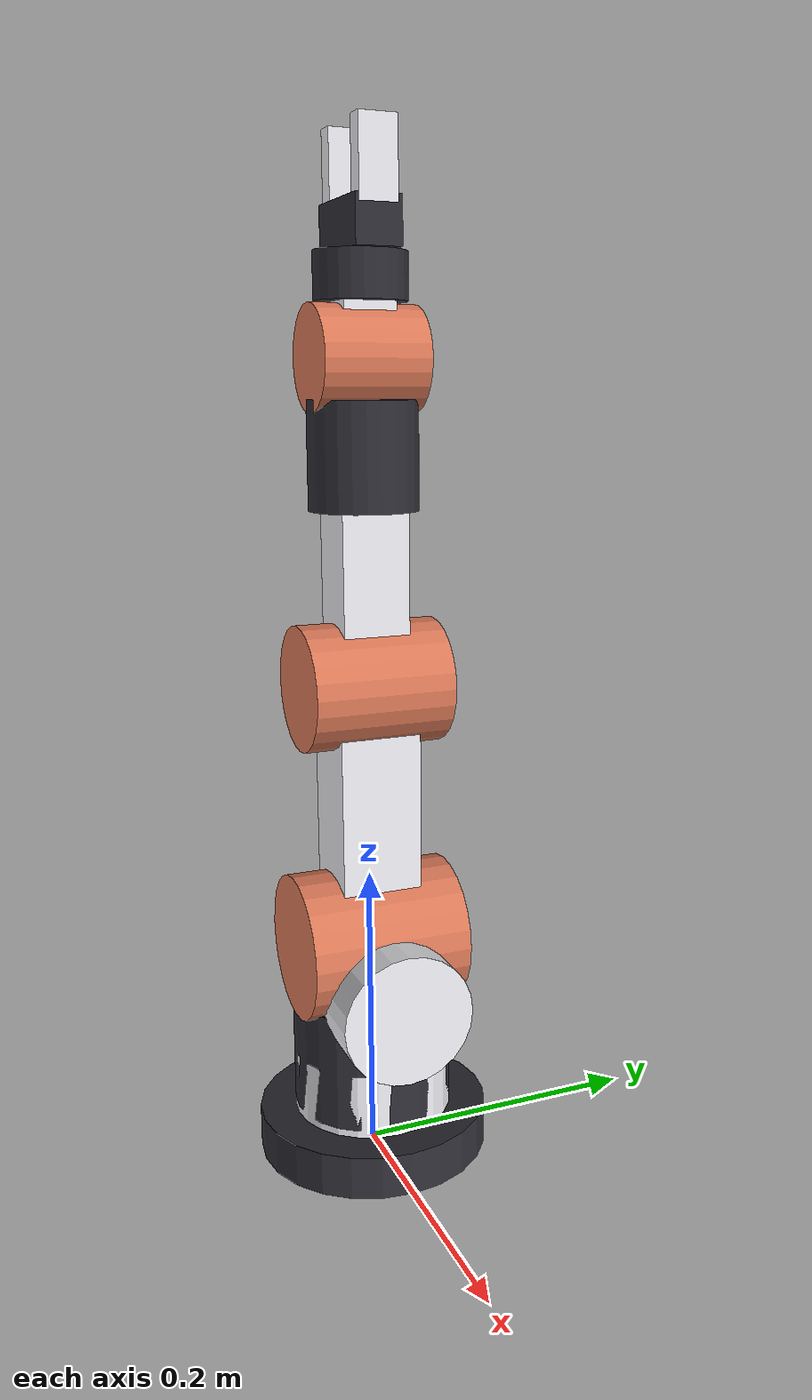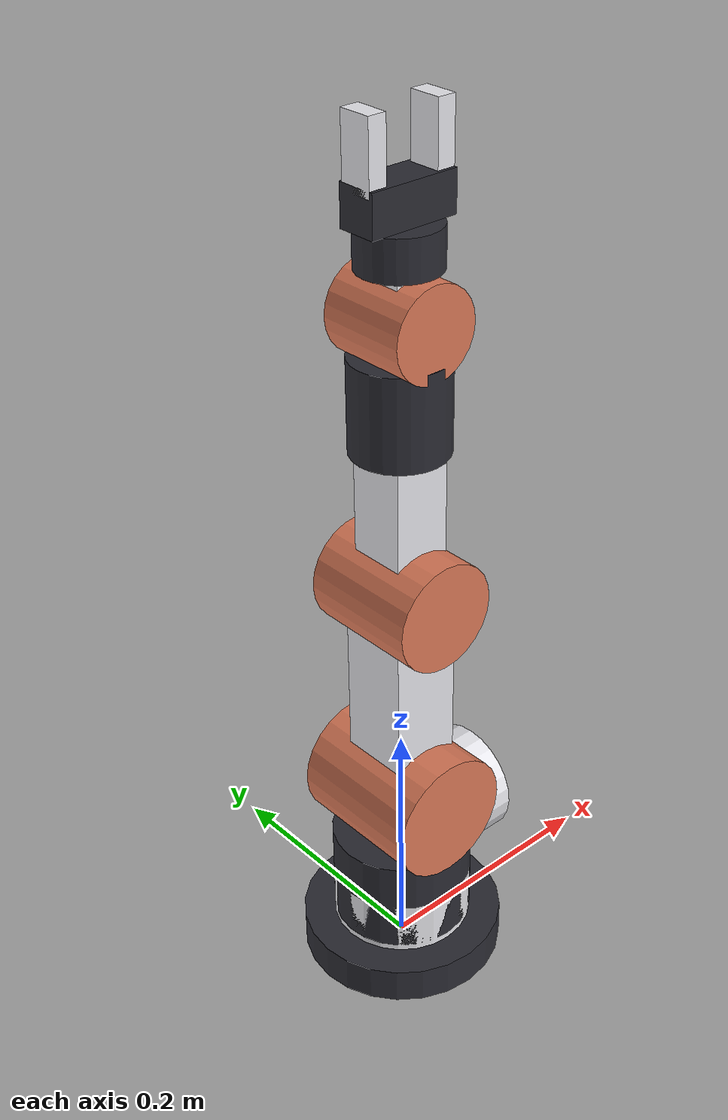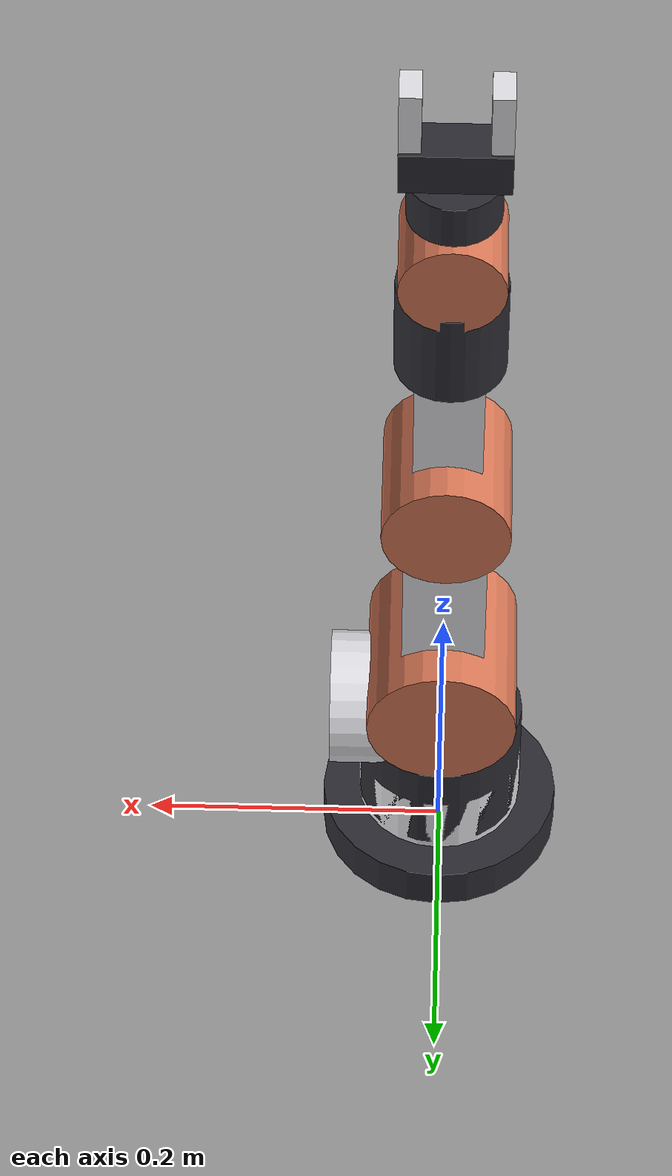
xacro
<?xml version="1.0"?>
<robot name="robot_arm" xmlns:xacro="http://www.ros.org/wiki/xacro">

  <!-- ===== tunable lengths (metres) ===== -->
  <xacro:property name="waist_h" value="0.08"/>
  <xacro:property name="upper"   value="0.18"/>   <!-- upper arm -->
  <xacro:property name="fore"    value="0.15"/>   <!-- forearm -->
  <xacro:property name="wrist"   value="0.06"/>
  <xacro:property name="jlim"    value="2.9"/>
  <xacro:property name="pi2"     value="1.5708"/>

  <material name="link_mat"><color rgba="0.90 0.90 0.92 1"/></material>
  <material name="joint_mat"><color rgba="0.17 0.17 0.20 1"/></material>
  <material name="accent"><color rgba="0.85 0.47 0.34 1"/></material>

  <!-- a motor housing: a cylinder oriented along the joint's rotation axis
       (rpy picks the axis: z=default, y="pi2 0 0", x="0 pi2 0") -->
  <xacro:macro name="motor" params="radius len rpy:='0 0 0' mat:=joint_mat">
    <visual>
      <origin xyz="0 0 0" rpy="${rpy}"/>
      <geometry><cylinder radius="${radius}" length="${len}"/></geometry>
      <material name="${mat}"/>
    </visual>
    <collision>
      <origin xyz="0 0 0" rpy="${rpy}"/>
      <geometry><cylinder radius="${radius}" length="${len}"/></geometry>
    </collision>
  </xacro:macro>

  <!-- a link segment: a tapered box running from the joint (+Z) to the next -->
  <xacro:macro name="segment" params="w len mat:=link_mat">
    <visual>
      <origin xyz="0 0 ${len/2}"/>
      <geometry><box size="${w} ${w} ${len}"/></geometry>
      <material name="${mat}"/>
    </visual>
    <collision>
      <origin xyz="0 0 ${len/2}"/>
      <geometry><box size="${w} ${w} ${len}"/></geometry>
    </collision>
  </xacro:macro>

  <xacro:macro name="inertia_box" params="mass">
    <inertial><mass value="${mass}"/>
      <inertia ixx="0.002" iyy="0.002" izz="0.002" ixy="0" ixz="0" iyz="0"/>
    </inertial>
  </xacro:macro>

  <!-- ===== base ===== -->
  <link name="world"/>
  <link name="base_link">
    <visual>
      <origin xyz="0 0 0.015"/>
      <geometry><cylinder radius="0.08" length="0.03"/></geometry>
      <material name="joint_mat"/>
    </visual>
    <visual>   <!-- riser -->
      <origin xyz="0 0 0.05"/>
      <geometry><cylinder radius="0.055" length="0.05"/></geometry>
      <material name="link_mat"/>
    </visual>
    <collision><origin xyz="0 0 0.03"/>
      <geometry><cylinder radius="0.08" length="0.06"/></geometry></collision>
    <xacro:inertia_box mass="1.5"/>
  </link>
  <joint name="world_to_base" type="fixed">
    <parent link="world"/><child link="base_link"/>
  </joint>

  <!-- ===== joint1 waist (Z) ===== -->
  <link name="link1">
    <xacro:motor radius="0.055" len="${waist_h}"/>   <!-- vertical waist can -->
    <visual><origin xyz="0.03 0 ${waist_h*0.6}" rpy="0 ${pi2} 0"/>
      <geometry><cylinder radius="0.045" length="0.09"/></geometry>
      <material name="link_mat"/></visual>   <!-- shoulder yoke -->
    <xacro:inertia_box mass="0.8"/>
  </link>
  <joint name="joint1" type="revolute">
    <parent link="base_link"/><child link="link1"/>
    <origin xyz="0 0 0.075"/><axis xyz="0 0 1"/>
    <limit lower="-${jlim}" upper="${jlim}" effort="30" velocity="2.0"/>
  </joint>

  <!-- ===== joint2 shoulder (Y) ===== -->
  <link name="link2">
    <xacro:motor radius="0.05" len="0.11" rpy="${pi2} 0 0" mat="accent"/>
    <xacro:segment w="0.055" len="${upper}"/>
    <xacro:inertia_box mass="0.8"/>
  </link>
  <joint name="joint2" type="revolute">
    <parent link="link1"/><child link="link2"/>
    <origin xyz="0 0 ${waist_h}"/><axis xyz="0 1 0"/>
    <limit lower="-${jlim}" upper="${jlim}" effort="30" velocity="2.0"/>
  </joint>

  <!-- ===== joint3 elbow (Y) ===== -->
  <link name="link3">
    <xacro:motor radius="0.042" len="0.095" rpy="${pi2} 0 0" mat="accent"/>
    <xacro:segment w="0.045" len="${fore}"/>
    <xacro:inertia_box mass="0.6"/>
  </link>
  <joint name="joint3" type="revolute">
    <parent link="link2"/><child link="link3"/>
    <origin xyz="0 0 ${upper}"/><axis xyz="0 1 0"/>
    <limit lower="-${jlim}" upper="${jlim}" effort="20" velocity="2.0"/>
  </joint>

  <!-- ===== joint4 wrist roll (Z) ===== -->
  <link name="link4">
    <xacro:motor radius="0.036" len="0.07"/>
    <xacro:segment w="0.04" len="${wrist}" mat="link_mat"/>
    <xacro:inertia_box mass="0.3"/>
  </link>
  <joint name="joint4" type="revolute">
    <parent link="link3"/><child link="link4"/>
    <origin xyz="0 0 ${fore}"/><axis xyz="0 0 1"/>
    <limit lower="-${jlim}" upper="${jlim}" effort="10" velocity="2.5"/>
  </joint>

  <!-- ===== joint5 wrist pitch (Y) ===== -->
  <link name="link5">
    <xacro:motor radius="0.034" len="0.07" rpy="${pi2} 0 0" mat="accent"/>
    <xacro:segment w="0.035" len="0.05" mat="link_mat"/>
    <xacro:inertia_box mass="0.2"/>
  </link>
  <joint name="joint5" type="revolute">
    <parent link="link4"/><child link="link5"/>
    <origin xyz="0 0 ${wrist}"/><axis xyz="0 1 0"/>
    <limit lower="-${jlim}" upper="${jlim}" effort="10" velocity="2.5"/>
  </joint>

  <!-- ===== joint6 tool roll (Z) + gripper ===== -->
  <link name="tool0">
    <xacro:motor radius="0.03" len="0.03"/>       <!-- flange -->
    <visual><origin xyz="0 0 0.03"/>              <!-- gripper palm -->
      <geometry><box size="0.07 0.03 0.03"/></geometry>
      <material name="joint_mat"/></visual>
    <visual><origin xyz="0.028 0 0.065"/>         <!-- finger + -->
      <geometry><box size="0.014 0.025 0.05"/></geometry>
      <material name="link_mat"/></visual>
    <visual><origin xyz="-0.028 0 0.065"/>        <!-- finger - -->
      <geometry><box size="0.014 0.025 0.05"/></geometry>
      <material name="link_mat"/></visual>
    <collision><origin xyz="0 0 0.04"/>
      <geometry><box size="0.07 0.04 0.08"/></geometry></collision>
    <xacro:inertia_box mass="0.2"/>
  </link>
  <joint name="joint6" type="revolute">
    <parent link="link5"/><child link="tool0"/>
    <origin xyz="0 0 0.05"/><axis xyz="0 0 1"/>
    <limit lower="-${jlim}" upper="${jlim}" effort="10" velocity="2.5"/>
  </joint>

  <!-- ===== ros2_control: mock hardware (swap for real servos later) ===== -->
  <ros2_control name="arm_hw" type="system">
    <hardware><plugin>mock_components/GenericSystem</plugin></hardware>
    <xacro:macro name="ji" params="name">
      <joint name="${name}">
        <command_interface name="position"/>
        <state_interface name="position"/>
        <state_interface name="velocity"/>
      </joint>
    </xacro:macro>
    <xacro:ji name="joint1"/><xacro:ji name="joint2"/><xacro:ji name="joint3"/>
    <xacro:ji name="joint4"/><xacro:ji name="joint5"/><xacro:ji name="joint6"/>
  </ros2_control>

</robot>
